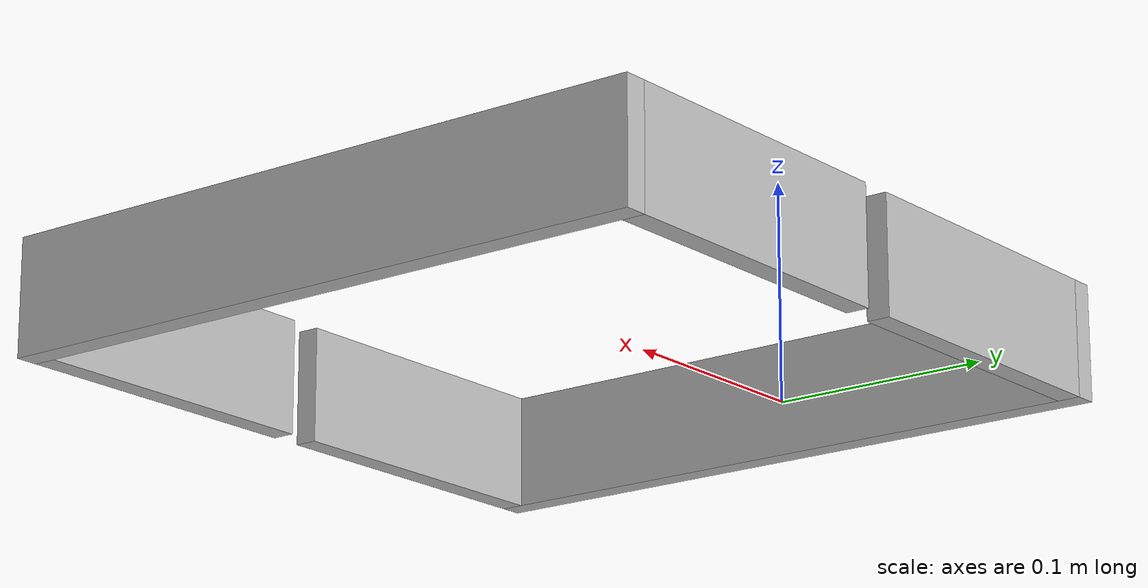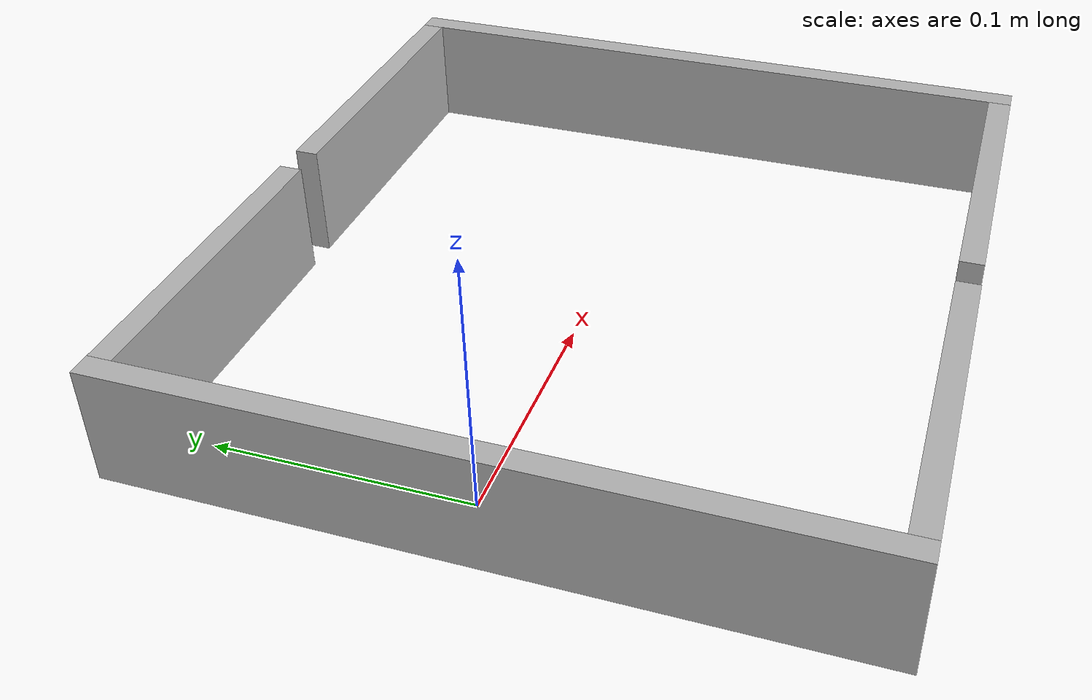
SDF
<sdf version='1.6'>
  <model name='gripper'>
    <link name='gripper_wide_block_p'>
      <pose frame=''>0 0 0 0 -0 0</pose>
      <inertial>
        <pose frame=''>0.036207 0 0 0 -0 0</pose>
        <mass>0.783</mass>
        <inertia>
          <ixx>0.0111512</ixx>
          <ixy>0</ixy>
          <ixz>0</ixz>
          <iyy>0.00188368</iyy>
          <iyz>0</iyz>
          <izz>0.0127087</izz>
        </inertia>
      </inertial>
      <collision name='gripper_wide_block_p_fixed_joint_lump__collision_collision'>
        <pose frame=''>0 0 0 0 -0 0</pose>
        <geometry>
          <box>
            <size>0.01 0.3 0.05</size>
          </box>
        </geometry>
      </collision>
      <collision name='gripper_wide_block_p_fixed_joint_lump__collision_collision_1'>
        <pose frame=''>0.075 0.145 0 0 -0 0</pose>
        <geometry>
          <box>
            <size>0.14 0.01 0.05</size>
          </box>
        </geometry>
      </collision>
      <collision name='gripper_wide_block_p_fixed_joint_lump__collision_collision_2'>
        <pose frame=''>0.075 -0.145 0 0 -0 0</pose>
        <geometry>
          <box>
            <size>0.14 0.01 0.05</size>
          </box>
        </geometry>
      </collision>
      <visual name='gripper_wide_block_p_visual'>
        <pose frame=''>0 0 0 0 -0 0</pose>
        <geometry>
          <box>
            <size>0.01 0.3 0.05</size>
          </box>
        </geometry>
      </visual>
      <visual name='gripper_wide_block_p_fixed_joint_lump__gripper_side_block_p1_visual_1'>
        <pose frame=''>0.075 0.145 0 0 -0 0</pose>
        <geometry>
          <box>
            <size>0.14 0.01 0.05</size>
          </box>
        </geometry>
      </visual>
      <visual name='gripper_wide_block_p_fixed_joint_lump__gripper_side_block_p2_visual_2'>
        <pose frame=''>0.075 -0.145 0 0 -0 0</pose>
        <geometry>
          <box>
            <size>0.14 0.01 0.05</size>
          </box>
        </geometry>
      </visual>
    </link>
    <link name='gripper_wide_block_d'>
      <pose frame=''>0.304 0 0 0 -0 0</pose>
      <inertial>
        <pose frame=''>-0.036207 0 0 0 -0 0</pose>
        <mass>0.783</mass>
        <inertia>
          <ixx>0.0111512</ixx>
          <ixy>0</ixy>
          <ixz>0</ixz>
          <iyy>0.00188368</iyy>
          <iyz>0</iyz>
          <izz>0.0127087</izz>
        </inertia>
      </inertial>
      <collision name='gripper_wide_block_d_fixed_joint_lump__collision_collision'>
        <pose frame=''>0 0 0 0 -0 0</pose>
        <geometry>
          <box>
            <size>0.01 0.3 0.05</size>
          </box>
        </geometry>
      </collision>
      <collision name='gripper_wide_block_d_fixed_joint_lump__collision_collision_1'>
        <pose frame=''>-0.075 0.145 0 0 -0 0</pose>
        <geometry>
          <box>
            <size>0.14 0.01 0.05</size>
          </box>
        </geometry>
      </collision>
      <collision name='gripper_wide_block_d_fixed_joint_lump__collision_collision_2'>
        <pose frame=''>-0.075 -0.145 0 0 -0 0</pose>
        <geometry>
          <box>
            <size>0.14 0.01 0.05</size>
          </box>
        </geometry>
      </collision>
      <visual name='gripper_wide_block_d_visual'>
        <pose frame=''>0 0 0 0 -0 0</pose>
        <geometry>
          <box>
            <size>0.01 0.3 0.05</size>
          </box>
        </geometry>
      </visual>
      <visual name='gripper_wide_block_d_fixed_joint_lump__gripper_side_block_d1_visual_1'>
        <pose frame=''>-0.075 0.145 0 0 -0 0</pose>
        <geometry>
          <box>
            <size>0.14 0.01 0.05</size>
          </box>
        </geometry>
      </visual>
      <visual name='gripper_wide_block_d_fixed_joint_lump__gripper_side_block_d2_visual_2'>
        <pose frame=''>-0.075 -0.145 0 0 -0 0</pose>
        <geometry>
          <box>
            <size>0.14 0.01 0.05</size>
          </box>
        </geometry>
      </visual>
    </link>
    <joint name='gripper_joint' type='revolute'>
      <child>gripper_wide_block_d</child>
      <parent>gripper_wide_block_p</parent>
      <axis>
        <xyz>1 0 0</xyz>
        <limit>
          <lower>-1e+16</lower>
          <upper>1e+16</upper>
        </limit>
        <dynamics>
          <spring_reference>0</spring_reference>
          <spring_stiffness>0</spring_stiffness>
        </dynamics>
        <use_parent_model_frame>1</use_parent_model_frame>
      </axis>
    </joint>
    <static>0</static>
    <plugin name='gazebo_ros_control' filename='libgazebo_ros_control.so'>
      <robotNamespace>/gripper</robotNamespace>
    </plugin>
  </model>
</sdf>
